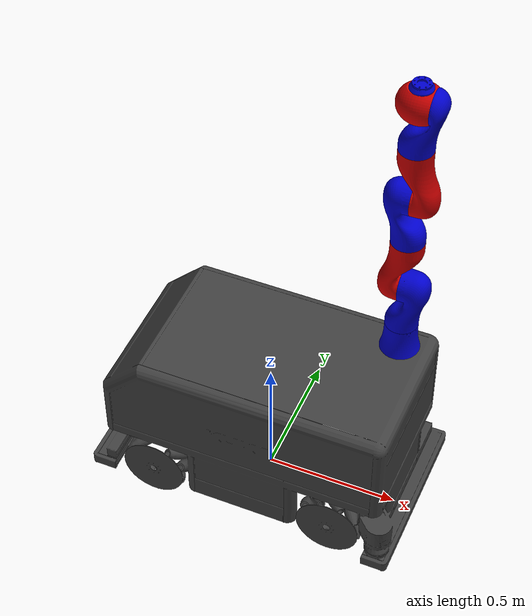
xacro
<?xml version="1.0"?>
<robot name="omnirob" xmlns:xacro="http://ros.org/wiki/xacro">
	<xacro:include filename="$(find omnirob_description)/urdf/xacro/omnirob_prm_planner.urdf.xacro"/>
  	<xacro:include filename="$(find omnirob_description)/urdf/xacro/lbr.urdf.xacro"/>

    <xacro:omnirob_base></xacro:omnirob_base>
	<xacro:lbr name="lbr" parent="omnirob">
		<origin xyz="0.42 0.18 0.655" rpy="0 0 -1.5708" />
	</xacro:lbr>
</robot>

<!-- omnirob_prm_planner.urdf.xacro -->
<robot xmlns:xacro="http://ros.org/wiki/xacro">
    <xacro:macro name="omnirob_base">
        <material name="Gray">
            <color rgba="0.25 0.25 0.25 1.0"/>
        </material>

        <link name="global_base_link_1" >
        </link>
        <link name="global_base_link_2" >
        </link>
        <link name="global_base_link_3" >
        </link>
        <link name="global_base_link_4" >
        </link>

		<joint name="global_rot1_joint" type="revolute">
			<origin xyz="0 0 0" rpy="0 0 0" />
			<parent link="global_base_link_1" />
			<child link="global_base_link_2" />
			<axis xyz="0 0 1" />
			<limit effort="100" lower="0" upper="0" velocity="2"/>
		</joint>

		<joint name="global_lin_joint" type="prismatic">
			<origin xyz="0 0 0" rpy="0 0 0" />
			<parent link="global_base_link_2" />
			<child link="global_base_link_3" />
			<axis xyz="1 0 0" />
			<limit effort="100" lower="0" upper="0" velocity="2"/>
		</joint>

		<joint name="global_rot2_joint" type="revolute">
			<origin xyz="0 0 0" rpy="0 0 0" />
			<parent link="global_base_link_3" />
			<child link="global_base_link_4" />
			<axis xyz="0 0 1" />
			<limit effort="100" lower="0" upper="0" velocity="2"/>
		</joint>

        <link name="base_link" >
          <visual>
            <origin xyz="0 0 0" rpy="0 0 0" />
            <geometry>
              <mesh filename="package://omnirob_description/meshes/omnirob_hull.stl" scale="0.001 0.001 0.001"/>
            </geometry>
           <material name="Gray"/>
          </visual>
          <collision>
            <origin xyz="0 0 0" rpy="0 0 0" />
            <geometry>
              <mesh filename="package://omnirob_description/meshes/omnirob_hull_low_res.stl" scale="0.001 0.001 0.001"/>
            </geometry>
          </collision>
        </link>

		<joint name="global_fixed_joint" type="fixed">
			<parent link="global_base_link_4" />
			<child link="base_link" />
		</joint>

        <link name="laser_front_link">
        </link>

        <link name="laser_rear_link">
        </link>

        <joint name="laser_front_joint" type="fixed">
          <parent link="base_link" />
          <child link="laser_front_link" />
          <origin xyz="0.542477 -0.317722 0.13664" rpy="0 0 -0.78893" />
        </joint>

        <joint name="laser_rear_joint" type="fixed">
          <parent link="base_link" />
          <child link="laser_rear_link" />
          <origin xyz="-0.534443 0.32895 0.13664" rpy="0 0 2.31624" />
		</joint>
	</xacro:macro>
</robot>

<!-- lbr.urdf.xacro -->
<!-- FROM: https://github.com/IDSCETHZurich/re_trajectory-generator -->
<robot xmlns:xacro="http://ros.org/wiki/xacro">

	<xacro:include filename="$(find omnirob_description)/urdf/xacro/lbr_only.urdf.xacro"/>

	<xacro:macro name="lbr" params="parent name *origin">

	<xacro:lbr_only name="${name}">
	</xacro:lbr_only>

	<joint name="${parent}_base_joint" type="fixed" >
		<origin xyz="0.42 0.18 0.655" rpy="0 0 -1.5708" />
		<parent link="base_link" />
		<child link="${name}_0_link" />
	</joint>

	</xacro:macro>

</robot>

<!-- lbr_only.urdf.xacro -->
<!-- FROM: https://github.com/IDSCETHZurich/re_trajectory-generator -->
<robot xmlns:xacro="http://ros.org/wiki/xacro">

  <!-- Import all Gazebo-customization elements, including Gazebo colors -->
	<xacro:include filename="$(find omnirob_description)/urdf/xacro/lbr_only.gazebo" />
	<!-- Import Rviz colors -->
	<xacro:include filename="$(find omnirob_description)/urdf/xacro/lbr_materials.xacro" />

	<xacro:macro name="lbr_only" params="name">

		<!-- Used for fixing robot to Gazebo 'base_link' -->

		<link name="${name}_0_link">
			<inertial>
				<origin xyz="0 0 0" rpy="0 0 0" />
				<mass value="1.0" />
				<inertia ixx="0.01" ixy="0" ixz="0" iyy="0.01" iyz="0" izz="0.01" />
			</inertial>

			<visual>
				<origin xyz="0 0 0" rpy="0 0 0" />
				<geometry>
					<mesh filename="package://omnirob_description/meshes/lbr0.stl" />
				</geometry>
				<material name="Blue" />
			</visual>

			<collision>
				<origin xyz="0 0 0" rpy="0 0 0" />
				<geometry>
					<mesh filename="package://omnirob_description/meshes/lbr0_low_res.stl" />
				</geometry>
			</collision>
		</link>

		<!-- joint between arm_0_link and arm_1_link -->
		<joint name="${name}_1_joint" type="revolute">
			<origin xyz="0 0 0.1105" rpy="0 0 0" />
			<parent link="${name}_0_link" />
			<child link="${name}_1_link" />
			<axis xyz="0 0 1" />
			<dynamics damping="25" />
			<limit effort="200" velocity="1.9634" lower="-2.9670" upper="2.9670" />
		</joint>

		<link name="${name}_1_link">
			<inertial>
				<origin xyz="0 0 0" rpy="0 0 0" />
				<mass value="5.9907" />
				<inertia ixx="0.01" ixy="0" ixz="0" iyy="0.01" iyz="0" izz="0.01" />
			</inertial>

			<visual>
				<origin xyz="0 0 0" rpy="0 0 0" />
				<geometry>
					<mesh filename="package://omnirob_description/meshes/lbr1.stl" />
				</geometry>
				<material name="Blue" />
			</visual>

			<collision>
				<origin xyz="0 0 0" rpy="0 0 0" />
				<geometry>
					<mesh filename="package://omnirob_description/meshes/lbr1_low_res.stl" />
				</geometry>
			</collision>
		</link>

		<!-- joint between arm_1_link and arm_2_link -->
		<joint name="${name}_2_joint" type="revolute">
			<origin xyz="0 0 0.1915" rpy="1.5708 0 0" />
			<parent link="${name}_1_link" />
			<child link="${name}_2_link" />
			<axis xyz="0 0 1" />
			<dynamics damping="25" />
			<limit effort="200" velocity="1.9634" lower="-2.0943" upper="2.0943" />
		</joint>

		<link name="${name}_2_link">
			<inertial>
				<origin xyz="0 0 0.002" rpy="0 0 0" />
				<mass value="5.734939" />
				<inertia ixx="0.03" ixy="0" ixz="0" iyy="0.03" iyz="0" izz="0.03" />
			</inertial>

			<visual>
				<origin xyz="0 0 0.002" rpy="0 0 0" />
				<geometry>
					<mesh filename="package://omnirob_description/meshes/lbr2.stl" />
				</geometry>
				<material name="Red" />
			</visual>

			<collision>
				<origin xyz="0 0 0.002" rpy="0 0 0" />
				<geometry>
					<mesh filename="package://omnirob_description/meshes/lbr2_low_res.stl" />
				</geometry>
			</collision>
		</link>

		<!-- joint between arm_2_link and arm_3_link -->
		<joint name="${name}_3_joint" type="revolute">
			<origin xyz="0 0.2085 0" rpy="-1.5708 0 0" />
			<parent link="${name}_2_link" />
			<child link="${name}_3_link" />
			<axis xyz="0 0 1" />
			<dynamics damping="25" />
			<limit effort="100" velocity="1.9634" lower="-2.9670" upper="2.9670" />
		</joint>

		<link name="${name}_3_link">
			<inertial>
				<origin xyz="0 -0.002 0" rpy="0 0 0" />
				<mass value="4.214668" />
				<inertia ixx="0.03" ixy="0" ixz="0" iyy="0.03" iyz="0" izz="0.03" />
			</inertial>

			<visual>
				<origin xyz="0 -0.002 0" rpy="0 0 0" />
				<geometry>
					<mesh filename="package://omnirob_description/meshes/lbr3.stl" />
				</geometry>
				<material name="Blue" />
			</visual>

			<collision>
				<origin xyz="0 -0.002 0" rpy="0 0 0" />
				<geometry>
					<mesh filename="package://omnirob_description/meshes/lbr3_low_res.stl" />
				</geometry>
			</collision>
		</link>

		<!-- joint between arm_3_link and arm_4_link -->
		<joint name="${name}_4_joint" type="revolute">
			<origin xyz="0 0 0.1915" rpy="-1.5708 0 0" />
			<parent link="${name}_3_link" />
			<child link="${name}_4_link" />
			<axis xyz="0 0 1" />
			<dynamics damping="25" />
			<limit effort="100" velocity="1.9634" lower="-2.0943" upper="2.0943" />
		</joint>

		<link name="${name}_4_link">
			<inertial>
				<origin xyz="0 0 0" rpy="0 0 0" />
				<mass value="3.669819" />
				<inertia ixx="0.03" ixy="0" ixz="0" iyy="0.03" iyz="0" izz="0.03" />
			</inertial>

			<visual>
				<origin xyz="0 0 0" rpy="0 0 0" />
				<geometry>
					<mesh filename="package://omnirob_description/meshes/lbr4.stl" />
				</geometry>
				<material name="Red" />
			</visual>

			<collision>
				<origin xyz="0 0 0" rpy="0 0 0" />
				<geometry>
					<mesh filename="package://omnirob_description/meshes/lbr4_low_res.stl" />
				</geometry>
			</collision>
		</link>

		<!-- joint between arm_4_link and arm_5_link -->
		<joint name="${name}_5_joint" type="revolute">
			<origin xyz="0 -0.2085 0" rpy="1.5708 0 0" />
			<parent link="${name}_4_link" />
			<child link="${name}_5_link" />
			<axis xyz="0 0 1" />
			<dynamics damping="25" />
			<limit effort="100" velocity="3.1415926" lower="-2.9670" upper="2.9670" />
		</joint>
		<link name="${name}_5_link">
			<inertial>
				<origin xyz="0 0 0" rpy="0 0 0" />
				<mass value="2.313272" />
				<inertia ixx="0.03" ixy="0" ixz="0" iyy="0.03" iyz="0" izz="0.03" />
			</inertial>

			<visual>
				<origin xyz="0 0 0" rpy="0 0 0" />
				<geometry>
					<mesh filename="package://omnirob_description/meshes/lbr5.stl" />
				</geometry>
				<material name="Blue" />
			</visual>

			<collision>
				<origin xyz="0 0 0" rpy="0 0 0" />
				<geometry>
					<mesh filename="package://omnirob_description/meshes/lbr5_low_res.stl" />
				</geometry>
			</collision>
		</link>

		<!-- joint between arm_5_link and arm_6_link -->
		<joint name="${name}_6_joint" type="revolute">
			<origin xyz="0 0 0.1815" rpy="1.5708 0 0" />
			<parent link="${name}_5_link" />
			<child link="${name}_6_link" />
			<axis xyz="0 0 1" />
			<dynamics damping="25" />
			<limit effort="30" velocity="1.9634" lower="-2.0943951" upper="2.0943951" />
		</joint>
		<link name="${name}_6_link">
			<inertial>
				<origin xyz="0 0 0" rpy="0 0 0" />
				<mass value="2.057856" />
				<inertia ixx="0.01" ixy="0" ixz="0" iyy="0.01" iyz="0" izz="0.01" />
			</inertial>

			<visual>
				<origin xyz="0 0 -0.046" rpy="0 0 0" />
				<geometry>
					<mesh filename="package://omnirob_description/meshes/lbr6.stl" />
				</geometry>
				<material name="Red" />
			</visual>

			<collision>
				<origin xyz="0 0 -0.046" rpy="0 0 0" />
				<geometry>
					<mesh filename="package://omnirob_description/meshes/lbr6_low_res.stl" />
				</geometry>
			</collision>
		</link>

		<!-- joint between arm_6_link and arm_7_link -->
		<joint name="${name}_7_joint" type="revolute">
			<origin xyz="0 0.057 0" rpy="-1.5708 0 0" />
			<parent link="${name}_6_link" />
			<child link="${name}_7_link" />
			<axis xyz="0 0 1" />
			<dynamics damping="25" />
			<limit effort="30" velocity="1.9634" lower="-2.9670" upper="2.9670" />
		</joint>
		<link name="${name}_7_link">
			<inertial>
				<origin xyz="0 0 0" rpy="0 0 0" />
				<mass value="1.120198" />
				<inertia ixx="0.01" ixy="0" ixz="0" iyy="0.01" iyz="0" izz="0.01" />
			</inertial>

			<visual>
				<origin xyz="0 0 0" rpy="0 0 0" />
				<geometry>
					<mesh filename="package://omnirob_description/meshes/lbr7.stl" />
				</geometry>
				<material name="Blue" />
			</visual>

			<collision>
				<origin xyz="0 0 0" rpy="0 0 0" />
				<geometry>
					<mesh filename="package://omnirob_description/meshes/lbr7_low_res.stl" />
				</geometry>
			</collision>
		</link>

		<joint name="flange" type="fixed">
    		<parent link="${name}_7_link"/>
   			<child link="${name}_flange_link"/>
    		<origin rpy="0 0 0" xyz="0 0 0.0195"/>
 		</joint>

		<link name="${name}_flange_link">
		</link>

		<transmission name="${name}_1_joint_trans">
			<type>pr2_mechanism_model/SimpleTransmission</type>
			<joint name="${name}_1_joint">
			  <hardwareInterface>EffortJointInterface</hardwareInterface>
			</joint>
			<actuator name="${name}_1_joint_motor">
			  <hardwareInterface>EffortJointInterface</hardwareInterface>
			  <mechanicalReduction>1</mechanicalReduction>
			</actuator>
		</transmission>

		<transmission name="${name}_2_joint_trans">
			<type>pr2_mechanism_model/SimpleTransmission</type>
			<joint name="${name}_2_joint">
			   <hardwareInterface>EffortJointInterface</hardwareInterface>
			</joint>
			<actuator name="${name}_2_joint_motor">
			  <hardwareInterface>EffortJointInterface</hardwareInterface>
			  <mechanicalReduction>1</mechanicalReduction>
			</actuator>
		</transmission>

		<transmission name="${name}_3_joint_trans">
			<type>pr2_mechanism_model/SimpleTransmission</type>
			<joint name="${name}_3_joint">
			   <hardwareInterface>EffortJointInterface</hardwareInterface>
			</joint>
			<actuator name="${name}_3_joint_motor">
			  <hardwareInterface>EffortJointInterface</hardwareInterface>
			  <mechanicalReduction>1</mechanicalReduction>
			</actuator>
		</transmission>

		<transmission name="${name}_4_joint_trans">
			<type>pr2_mechanism_model/SimpleTransmission</type>
			<joint name="${name}_4_joint">
			   <hardwareInterface>EffortJointInterface</hardwareInterface>
			</joint>
			<actuator name="${name}_4_joint_motor">
			  <hardwareInterface>EffortJointInterface</hardwareInterface>
			  <mechanicalReduction>1</mechanicalReduction>
			</actuator>
		</transmission>

		<transmission name="${name}_5_joint_trans">
			<type>pr2_mechanism_model/SimpleTransmission</type>
			<actuator name="${name}_5_joint_motor">
			  <hardwareInterface>EffortJointInterface</hardwareInterface>
			  <mechanicalReduction>1</mechanicalReduction>
			</actuator>
			<joint name="${name}_5_joint">
			   <hardwareInterface>EffortJointInterface</hardwareInterface>
			</joint>
		</transmission>

		<transmission name="${name}_6_joint_trans">
			<type>pr2_mechanism_model/SimpleTransmission</type>
			<actuator name="${name}_6_joint_motor">
			  <hardwareInterface>EffortJointInterface</hardwareInterface>
			  <mechanicalReduction>1</mechanicalReduction>
			</actuator>
			<joint name="${name}_6_joint">
			   <hardwareInterface>EffortJointInterface</hardwareInterface>
			</joint>
		</transmission>

		<transmission name="${name}_7_joint_trans">
			<type>pr2_mechanism_model/SimpleTransmission</type>
			<actuator name="${name}_7_joint_motor">
			  <hardwareInterface>EffortJointInterface</hardwareInterface>
			  <mechanicalReduction>1</mechanicalReduction>
			</actuator>
			<joint name="${name}_7_joint">
			   <hardwareInterface>EffortJointInterface</hardwareInterface>
			</joint>
		</transmission>

	</xacro:macro>

</robot>

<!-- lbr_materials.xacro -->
<robot>

	<material name="Blue">
		<color rgba="0.0 0.0 0.8 1.0" />
	</material>

	<material name="Green">
		<color rgba="0.0 0.8 0.0 1.0" />
	</material>

	<material name="Grey">
		<color rgba="0.7 0.7 0.7 1.0" />
	</material>

	<material name="Grey2">
		<color rgba="0.9 0.9 0.9 1.0" />
	</material>

	<material name="Red">
		<color rgba="0.8 0.0 0.0 1.0" />
	</material>

	<material name="orange">
	  <color rgba="${255/255} ${108/255} ${10/255} 1.0"/>
	</material>

	<material name="brown">
	  <color rgba="${222/255} ${207/255} ${195/255} 1.0"/>
	</material>

	<material name="White">
		<color rgba="1.0 1.0 1.0 1.0" />
	</material>

	<material name="Black">
		<color rgba="0.0 0.0 0.0 1.0" />
	</material>

</robot>
